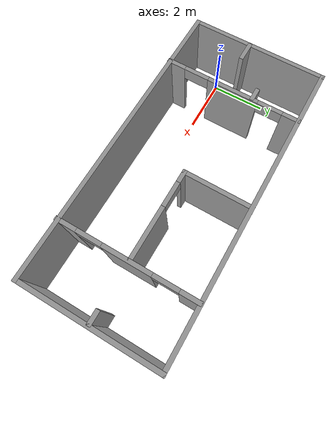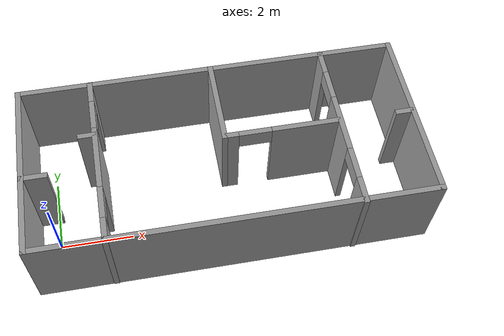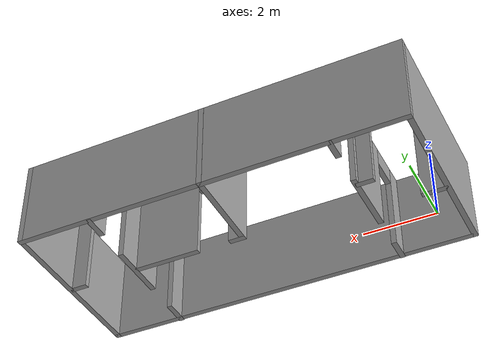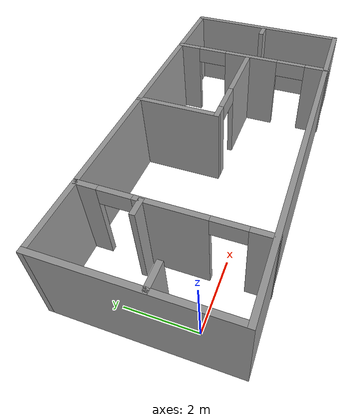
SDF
<?xml version='1.0'?>
<sdf version='1.7'>
  <model name='BigRoom'>
    <pose>4.73477 1.15842 0 0 -0 0</pose>
    <link name='Wall_43'>
      <collision name='Wall_43_Collision'>
        <geometry>
          <box>
            <size>10.75 0.15 2.5</size>
          </box>
        </geometry>
        <pose>0 0 1.25 0 -0 0</pose>
      </collision>
      <visual name='Wall_43_Visual'>
        <pose>0 0 1.25 0 -0 0</pose>
        <geometry>
          <box>
            <size>10.75 0.15 2.5</size>
          </box>
        </geometry>
        <material>
          <script>
            <uri>file://media/materials/scripts/gazebo.material</uri>
            <name>Gazebo/Grey</name>
          </script>
          <ambient>1 1 1 1</ambient>
        </material>
        <meta>
          <layer>0</layer>
        </meta>
      </visual>
      <pose>-0 -2.40954 0 0 -0 0</pose>
    </link>
    <link name='Wall_44'>
      <collision name='Wall_44_Collision'>
        <geometry>
          <box>
            <size>5 0.15 2.5</size>
          </box>
        </geometry>
        <pose>0 0 1.25 0 -0 0</pose>
      </collision>
      <visual name='Wall_44_Visual'>
        <pose>0 0 1.25 0 -0 0</pose>
        <geometry>
          <box>
            <size>5 0.15 2.5</size>
          </box>
        </geometry>
        <material>
          <script>
            <uri>file://media/materials/scripts/gazebo.material</uri>
            <name>Gazebo/Grey</name>
          </script>
          <ambient>1 1 1 1</ambient>
        </material>
        <meta>
          <layer>0</layer>
        </meta>
      </visual>
      <pose>5.3 0.015463 0 0 -0 1.5708</pose>
    </link>
    <link name='Wall_45'>
      <collision name='Wall_45_Collision'>
        <geometry>
          <box>
            <size>10.75 0.15 2.5</size>
          </box>
        </geometry>
        <pose>0 0 1.25 0 -0 0</pose>
      </collision>
      <visual name='Wall_45_Visual'>
        <pose>0 0 1.25 0 -0 0</pose>
        <geometry>
          <box>
            <size>10.75 0.15 2.5</size>
          </box>
        </geometry>
        <material>
          <script>
            <uri>file://media/materials/scripts/gazebo.material</uri>
            <name>Gazebo/Grey</name>
          </script>
          <ambient>1 1 1 1</ambient>
        </material>
        <meta>
          <layer>0</layer>
        </meta>
      </visual>
      <pose>-0 2.44046 0 0 -0 3.14159</pose>
    </link>
    <link name='Wall_46'>
      <collision name='Wall_46_Collision'>
        <geometry>
          <box>
            <size>5 0.15 2.5</size>
          </box>
        </geometry>
        <pose>0 0 1.25 0 -0 0</pose>
      </collision>
      <visual name='Wall_46_Visual'>
        <pose>0 0 1.25 0 -0 0</pose>
        <geometry>
          <box>
            <size>5 0.15 2.5</size>
          </box>
        </geometry>
        <material>
          <script>
            <uri>file://media/materials/scripts/gazebo.material</uri>
            <name>Gazebo/Grey</name>
          </script>
          <ambient>1 1 1 1</ambient>
        </material>
        <meta>
          <layer>0</layer>
        </meta>
      </visual>
      <pose>-5.3 0.015463 0 0 -0 -1.5708</pose>
    </link>
    <link name='Wall_48'>
      <pose>-3.3177 0 0 0 -0 -1.5708</pose>
      <visual name='Wall_48_Visual_0'>
        <pose>-2.17685 0 1.25 0 -0 0</pose>
        <geometry>
          <box>
            <size>0.646304 0.15 2.5</size>
          </box>
        </geometry>
        <material>
          <script>
            <uri>file://media/materials/scripts/gazebo.material</uri>
            <name>Gazebo/Grey</name>
          </script>
          <ambient>1 1 1 1</ambient>
        </material>
        <meta>
          <layer>0</layer>
        </meta>
      </visual>
      <collision name='Wall_48_Collision_0'>
        <geometry>
          <box>
            <size>0.646304 0.15 2.5</size>
          </box>
        </geometry>
        <pose>-2.17685 0 1.25 0 -0 0</pose>
      </collision>
      <visual name='Wall_48_Visual_1'>
        <pose>-0.023696 0 1.25 0 -0 0</pose>
        <geometry>
          <box>
            <size>1.86 0.15 2.5</size>
          </box>
        </geometry>
        <material>
          <script>
            <uri>file://media/materials/scripts/gazebo.material</uri>
            <name>Gazebo/Grey</name>
          </script>
          <ambient>1 1 1 1</ambient>
        </material>
        <meta>
          <layer>0</layer>
        </meta>
      </visual>
      <collision name='Wall_48_Collision_1'>
        <geometry>
          <box>
            <size>1.86 0.15 2.5</size>
          </box>
        </geometry>
        <pose>-0.023696 0 1.25 0 -0 0</pose>
      </collision>
      <visual name='Wall_48_Visual_2'>
        <pose>2.15315 0 1.25 0 -0 0</pose>
        <geometry>
          <box>
            <size>0.693696 0.15 2.5</size>
          </box>
        </geometry>
        <material>
          <script>
            <uri>file://media/materials/scripts/gazebo.material</uri>
            <name>Gazebo/Grey</name>
          </script>
          <ambient>1 1 1 1</ambient>
        </material>
        <meta>
          <layer>0</layer>
        </meta>
      </visual>
      <collision name='Wall_48_Collision_2'>
        <geometry>
          <box>
            <size>0.693696 0.15 2.5</size>
          </box>
        </geometry>
        <pose>2.15315 0 1.25 0 -0 0</pose>
      </collision>
      <visual name='Wall_48_Visual_3'>
        <pose>-1.4037 0 2.25 0 -0 0</pose>
        <geometry>
          <box>
            <size>0.9 0.15 0.5</size>
          </box>
        </geometry>
        <material>
          <script>
            <uri>file://media/materials/scripts/gazebo.material</uri>
            <name>Gazebo/Grey</name>
          </script>
          <ambient>1 1 1 1</ambient>
        </material>
        <meta>
          <layer>0</layer>
        </meta>
      </visual>
      <collision name='Wall_48_Collision_3'>
        <geometry>
          <box>
            <size>0.9 0.15 0.5</size>
          </box>
        </geometry>
        <pose>-1.4037 0 2.25 0 -0 0</pose>
      </collision>
      <visual name='Wall_48_Visual_4'>
        <pose>1.3563 0 2.25 0 -0 0</pose>
        <geometry>
          <box>
            <size>0.9 0.15 0.5</size>
          </box>
        </geometry>
        <material>
          <script>
            <uri>file://media/materials/scripts/gazebo.material</uri>
            <name>Gazebo/Grey</name>
          </script>
          <ambient>1 1 1 1</ambient>
        </material>
        <meta>
          <layer>0</layer>
        </meta>
      </visual>
      <collision name='Wall_48_Collision_4'>
        <geometry>
          <box>
            <size>0.9 0.15 0.5</size>
          </box>
        </geometry>
        <pose>1.3563 0 2.25 0 -0 0</pose>
      </collision>
    </link>
    <link name='Wall_50'>
      <pose>3.27361 -0.017391 0 0 -0 -1.5708</pose>
      <visual name='Wall_50_Visual_0'>
        <pose>-2.13954 0 1.25 0 -0 0</pose>
        <geometry>
          <box>
            <size>0.720913 0.15 2.5</size>
          </box>
        </geometry>
        <material>
          <script>
            <uri>file://media/materials/scripts/gazebo.material</uri>
            <name>Gazebo/Grey</name>
          </script>
          <ambient>1 1 1 1</ambient>
        </material>
        <meta>
          <layer>0</layer>
        </meta>
      </visual>
      <collision name='Wall_50_Collision_0'>
        <geometry>
          <box>
            <size>0.720913 0.15 2.5</size>
          </box>
        </geometry>
        <pose>-2.13954 0 1.25 0 -0 0</pose>
      </collision>
      <visual name='Wall_50_Visual_1'>
        <pose>-0.018087 0 1.25 0 -0 0</pose>
        <geometry>
          <box>
            <size>1.722 0.15 2.5</size>
          </box>
        </geometry>
        <material>
          <script>
            <uri>file://media/materials/scripts/gazebo.material</uri>
            <name>Gazebo/Grey</name>
          </script>
          <ambient>1 1 1 1</ambient>
        </material>
        <meta>
          <layer>0</layer>
        </meta>
      </visual>
      <collision name='Wall_50_Collision_1'>
        <geometry>
          <box>
            <size>1.722 0.15 2.5</size>
          </box>
        </geometry>
        <pose>-0.018087 0 1.25 0 -0 0</pose>
      </collision>
      <visual name='Wall_50_Visual_2'>
        <pose>2.12146 0 1.25 0 -0 0</pose>
        <geometry>
          <box>
            <size>0.757087 0.15 2.5</size>
          </box>
        </geometry>
        <material>
          <script>
            <uri>file://media/materials/scripts/gazebo.material</uri>
            <name>Gazebo/Grey</name>
          </script>
          <ambient>1 1 1 1</ambient>
        </material>
        <meta>
          <layer>0</layer>
        </meta>
      </visual>
      <collision name='Wall_50_Collision_2'>
        <geometry>
          <box>
            <size>0.757087 0.15 2.5</size>
          </box>
        </geometry>
        <pose>2.12146 0 1.25 0 -0 0</pose>
      </collision>
      <visual name='Wall_50_Visual_3'>
        <pose>-1.32909 0 2.25 0 -0 0</pose>
        <geometry>
          <box>
            <size>0.9 0.15 0.5</size>
          </box>
        </geometry>
        <material>
          <script>
            <uri>file://media/materials/scripts/gazebo.material</uri>
            <name>Gazebo/Grey</name>
          </script>
          <ambient>1 1 1 1</ambient>
        </material>
        <meta>
          <layer>0</layer>
        </meta>
      </visual>
      <collision name='Wall_50_Collision_3'>
        <geometry>
          <box>
            <size>0.9 0.15 0.5</size>
          </box>
        </geometry>
        <pose>-1.32909 0 2.25 0 -0 0</pose>
      </collision>
      <visual name='Wall_50_Visual_4'>
        <pose>1.29291 0 2.25 0 -0 0</pose>
        <geometry>
          <box>
            <size>0.9 0.15 0.5</size>
          </box>
        </geometry>
        <material>
          <script>
            <uri>file://media/materials/scripts/gazebo.material</uri>
            <name>Gazebo/Grey</name>
          </script>
          <ambient>1 1 1 1</ambient>
        </material>
        <meta>
          <layer>0</layer>
        </meta>
      </visual>
      <collision name='Wall_50_Collision_4'>
        <geometry>
          <box>
            <size>0.9 0.15 0.5</size>
          </box>
        </geometry>
        <pose>1.29291 0 2.25 0 -0 0</pose>
      </collision>
    </link>
    <link name='Wall_52'>
      <collision name='Wall_52_Collision'>
        <geometry>
          <box>
            <size>2.5 0.15 2.5</size>
          </box>
        </geometry>
        <pose>0 0 1.25 0 -0 0</pose>
      </collision>
      <visual name='Wall_52_Visual'>
        <pose>0 0 1.25 0 -0 0</pose>
        <geometry>
          <box>
            <size>2.5 0.15 2.5</size>
          </box>
        </geometry>
        <material>
          <script>
            <uri>file://media/materials/scripts/gazebo.material</uri>
            <name>Gazebo/Grey</name>
          </script>
          <ambient>1 1 1 1</ambient>
        </material>
        <meta>
          <layer>0</layer>
        </meta>
      </visual>
      <pose>0.090999 1.26739 0 0 -0 -1.5708</pose>
    </link>
    <link name='Wall_56'>
      <pose>1.641 0.092391 0 0 -0 0</pose>
      <visual name='Wall_56_Visual_0'>
        <pose>-1.39605 0 1.25 0 -0 0</pose>
        <geometry>
          <box>
            <size>0.4579 0.15 2.5</size>
          </box>
        </geometry>
        <material>
          <script>
            <uri>file://media/materials/scripts/gazebo.material</uri>
            <name>Gazebo/Grey</name>
          </script>
          <ambient>1 1 1 1</ambient>
        </material>
        <meta>
          <layer>0</layer>
        </meta>
      </visual>
      <collision name='Wall_56_Collision_0'>
        <geometry>
          <box>
            <size>0.4579 0.15 2.5</size>
          </box>
        </geometry>
        <pose>-1.39605 0 1.25 0 -0 0</pose>
      </collision>
      <visual name='Wall_56_Visual_1'>
        <pose>0.67895 0 1.25 0 -0 0</pose>
        <geometry>
          <box>
            <size>1.8921 0.15 2.5</size>
          </box>
        </geometry>
        <material>
          <script>
            <uri>file://media/materials/scripts/gazebo.material</uri>
            <name>Gazebo/Grey</name>
          </script>
          <ambient>1 1 1 1</ambient>
        </material>
        <meta>
          <layer>0</layer>
        </meta>
      </visual>
      <collision name='Wall_56_Collision_1'>
        <geometry>
          <box>
            <size>1.8921 0.15 2.5</size>
          </box>
        </geometry>
        <pose>0.67895 0 1.25 0 -0 0</pose>
      </collision>
      <visual name='Wall_56_Visual_2'>
        <pose>-0.7171 0 2.25 0 -0 0</pose>
        <geometry>
          <box>
            <size>0.9 0.15 0.5</size>
          </box>
        </geometry>
        <material>
          <script>
            <uri>file://media/materials/scripts/gazebo.material</uri>
            <name>Gazebo/Grey</name>
          </script>
          <ambient>1 1 1 1</ambient>
        </material>
        <meta>
          <layer>0</layer>
        </meta>
      </visual>
      <collision name='Wall_56_Collision_2'>
        <geometry>
          <box>
            <size>0.9 0.15 0.5</size>
          </box>
        </geometry>
        <pose>-0.7171 0 2.25 0 -0 0</pose>
      </collision>
    </link>
    <link name='Wall_59'>
      <collision name='Wall_59_Collision'>
        <geometry>
          <box>
            <size>0.5 0.15 2.5</size>
          </box>
        </geometry>
        <pose>0 0 1.25 0 -0 0</pose>
      </collision>
      <visual name='Wall_59_Visual'>
        <pose>0 0 1.25 0 -0 0</pose>
        <geometry>
          <box>
            <size>0.5 0.15 2.5</size>
          </box>
        </geometry>
        <material>
          <script>
            <uri>file://media/materials/scripts/gazebo.material</uri>
            <name>Gazebo/Grey</name>
          </script>
          <ambient>1 1 1 1</ambient>
        </material>
        <meta>
          <layer>0</layer>
        </meta>
      </visual>
      <pose>-3.5291 0.736696 0 0 -0 3.14159</pose>
    </link>
    <link name='Wall_61'>
      <collision name='Wall_61_Collision'>
        <geometry>
          <box>
            <size>0.75 0.15 2.5</size>
          </box>
        </geometry>
        <pose>0 0 1.25 0 -0 0</pose>
      </collision>
      <visual name='Wall_61_Visual'>
        <pose>0 0 1.25 0 -0 0</pose>
        <geometry>
          <box>
            <size>0.75 0.15 2.5</size>
          </box>
        </geometry>
        <material>
          <script>
            <uri>file://media/materials/scripts/gazebo.material</uri>
            <name>Gazebo/Grey</name>
          </script>
          <ambient>1 1 1 1</ambient>
        </material>
        <meta>
          <layer>0</layer>
        </meta>
      </visual>
      <pose>-4.9861 -0.321304 0 0 -0 0</pose>
    </link>
    <link name='Wall_63'>
      <collision name='Wall_63_Collision'>
        <geometry>
          <box>
            <size>0.5 0.15 2.5</size>
          </box>
        </geometry>
        <pose>0 0 1.25 0 -0 0</pose>
      </collision>
      <visual name='Wall_63_Visual'>
        <pose>0 0 1.25 0 -0 0</pose>
        <geometry>
          <box>
            <size>0.5 0.15 2.5</size>
          </box>
        </geometry>
        <material>
          <script>
            <uri>file://media/materials/scripts/gazebo.material</uri>
            <name>Gazebo/Grey</name>
          </script>
          <ambient>1 1 1 1</ambient>
        </material>
        <meta>
          <layer>0</layer>
        </meta>
      </visual>
      <pose>5.0499 0.069696 0 0 -0 3.14159</pose>
    </link>
    <static>1</static>
  </model>
</sdf>
